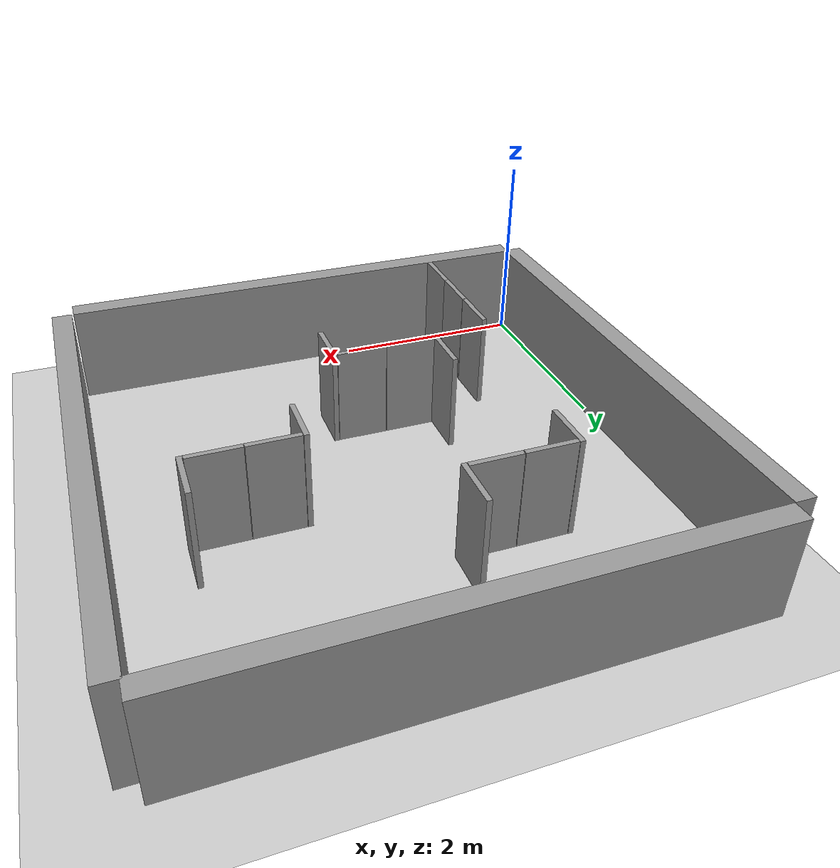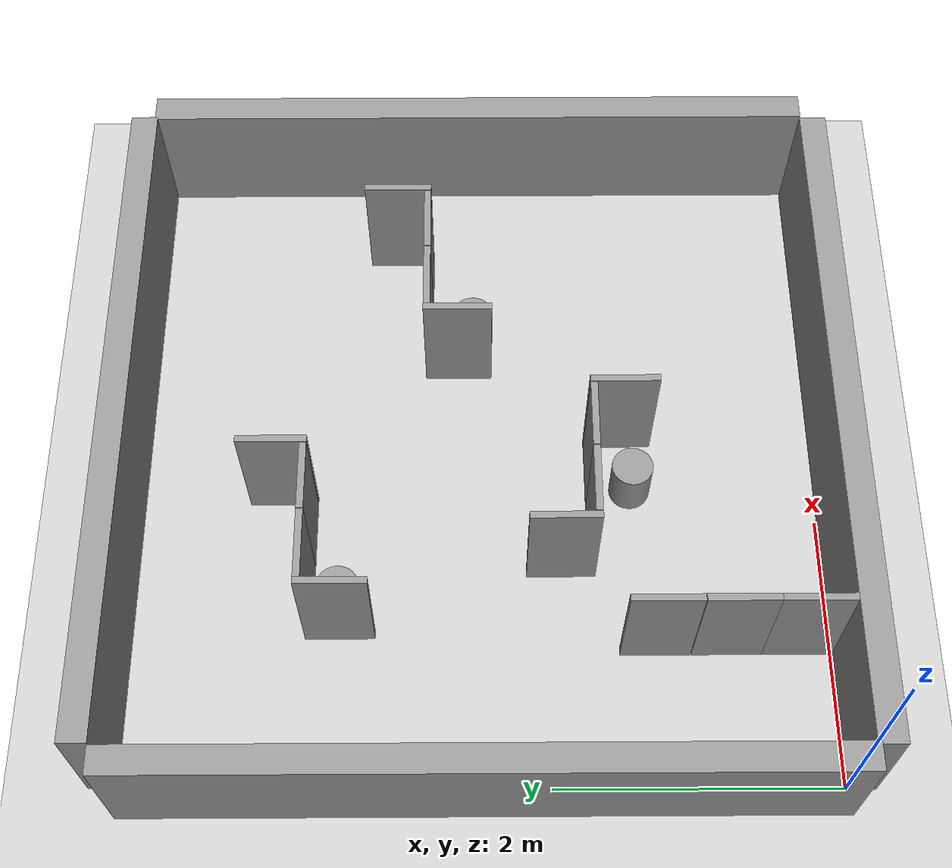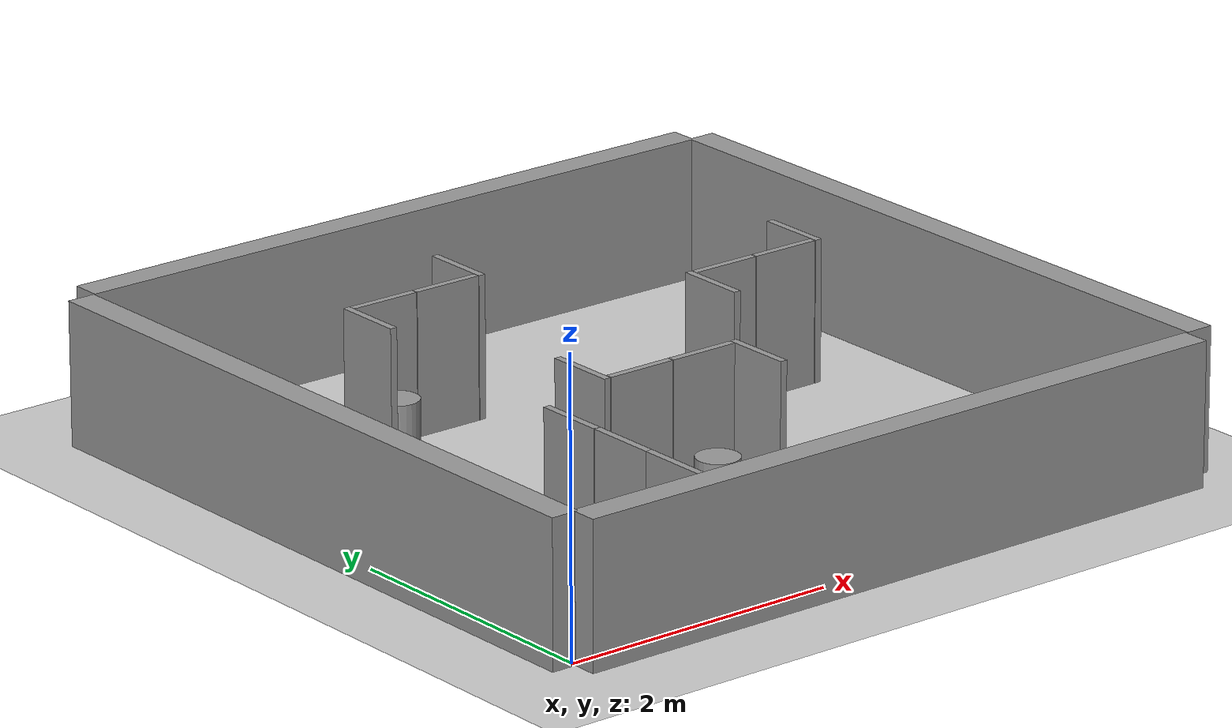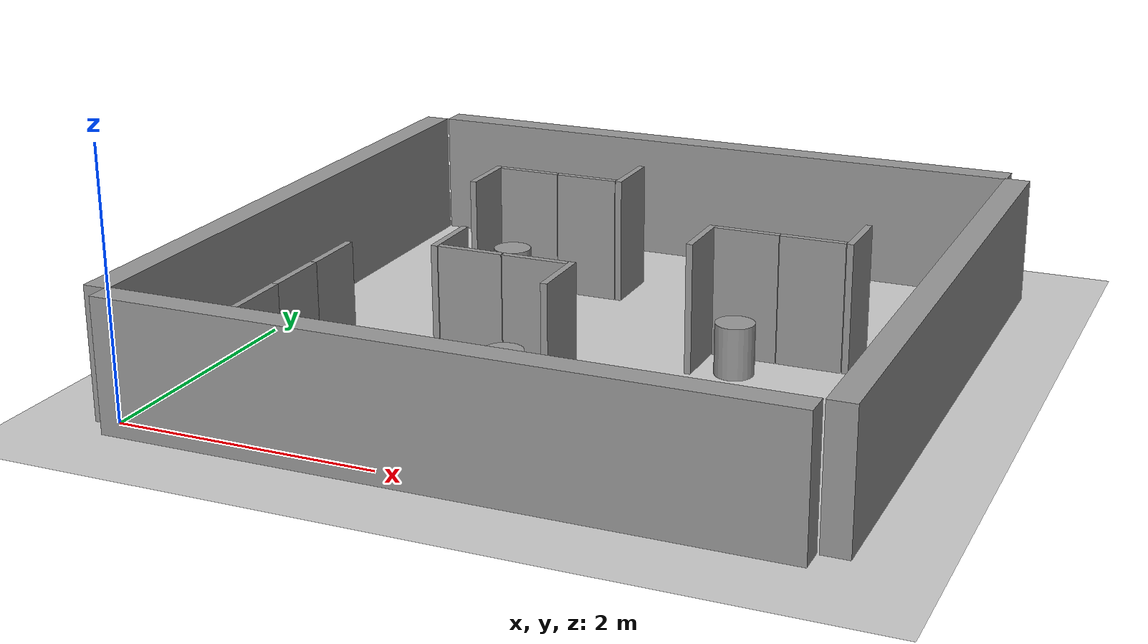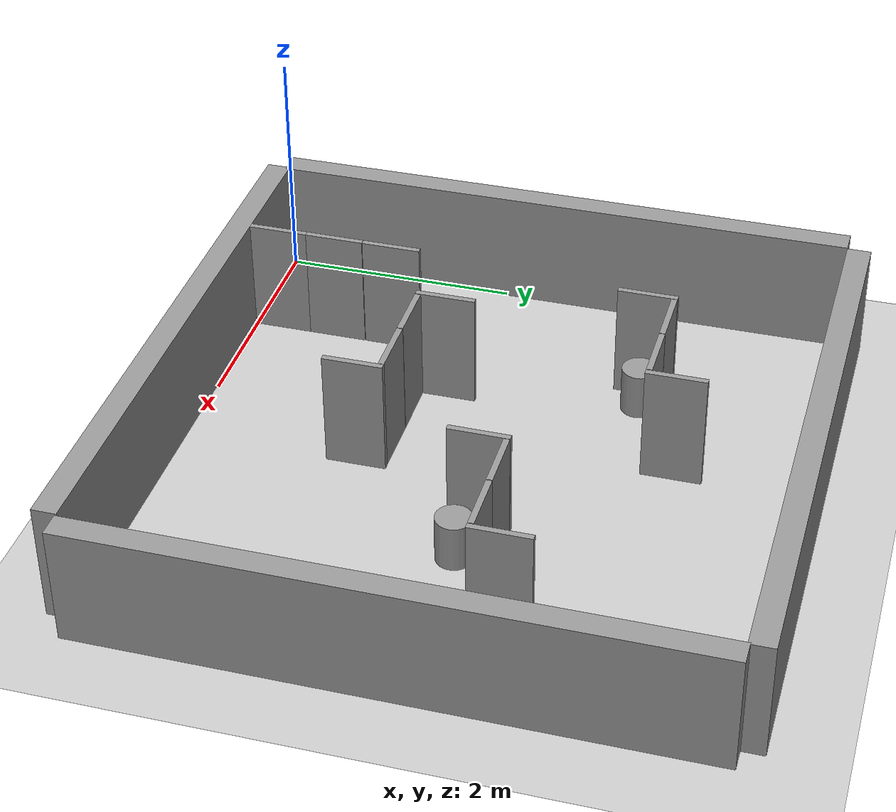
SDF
<sdf version="1.7">
 <world name="default">
  <light name="sun" type="directional">
   <pose>0 0 10 0 -0 0</pose>
   <diffuse>0.8 0.8 0.8 1</diffuse>
   <specular>0.2 0.2 0.2 1</specular>
   <attenuation>
    <range>1000</range>
    <constant>0.9</constant>
    <linear>0.01</linear>
    <quadratic>0.001</quadratic>
   </attenuation>
   <direction>-0.5 0.1 -0.9</direction>
   <spot><inner_angle>0</inner_angle><outer_angle>0</outer_angle><falloff>0</falloff></spot>
  </light>
  <model name="ground_plane">
   <static>1</static>
   <link name="link">
    <collision name="collision">
     <geometry><plane><normal>0 0 1</normal><size>100 100</size></plane></geometry>
     <surface><friction><ode><mu>100</mu><mu2>50</mu2></ode></friction></surface>
    </collision>
    <visual name="visual">
     <cast_shadows>0</cast_shadows>
     <geometry><plane><normal>0 0 1</normal><size>100 100</size></plane></geometry>
     <material>
      <script><uri>file://media/materials/scripts/gazebo.material</uri><name>Gazebo/Grey</name></script>
     </material>
    </visual>
   </link>
  </model>
  <gravity>0 0 -9.8</gravity>
  <magnetic_field>6e-06 2.3e-05 -4.2e-05</magnetic_field>
  <atmosphere type="adiabatic"/>
  <physics type="ode">
   <max_step_size>0.001</max_step_size>
   <real_time_factor>1</real_time_factor>
   <real_time_update_rate>1000</real_time_update_rate>
  </physics>
  <scene><ambient>0.4 0.4 0.4 1</ambient><background>0.7 0.7 0.7 1</background><shadows>1</shadows></scene>
  <audio><device>default</device></audio>
  <spherical_coordinates>
   <surface_model>EARTH_WGS84</surface_model>
   <latitude_deg>0</latitude_deg>
   <longitude_deg>0</longitude_deg>
   <elevation>0</elevation>
   <heading_deg>0</heading_deg>
  </spherical_coordinates>
  <model name="maze_wall_5m">
   <link name="link_0">
    <inertial>
     <mass>1</mass>
     <inertia>
      <ixx>0.166667</ixx>
      <ixy>0</ixy>
      <ixz>0</ixz>
      <iyy>0.166667</iyy>
      <iyz>0</iyz>
      <izz>0.166667</izz>
     </inertia>
    </inertial>
    <visual name="visual">
     <geometry><box><size>5 0.2 1</size></box></geometry>
     <material>
      <lighting>1</lighting>
      <script><uri>file://media/materials/scripts/gazebo.material</uri><name>Gazebo/Grey</name></script>
      <shader type="pixel"><normal_map>__default__</normal_map></shader>
      <ambient>0.3 0.3 0.3 1</ambient>
      <diffuse>0.7 0.7 0.7 1</diffuse>
      <specular>0.01 0.01 0.01 1</specular>
      <emissive>0 0 0 1</emissive>
     </material>
    </visual>
    <collision name="collision">
     <geometry><box><size>5 0.2 1</size></box></geometry>
     <surface>
      <friction>
       <ode><mu>1</mu><mu2>1</mu2><fdir1>0 0 0</fdir1><slip1>0</slip1><slip2>0</slip2></ode>
       <torsional>
        <coefficient>1</coefficient>
        <patch_radius>0</patch_radius>
        <surface_radius>0</surface_radius>
        <use_patch_radius>1</use_patch_radius>
        <ode><slip>0</slip></ode>
       </torsional>
      </friction>
      <bounce><restitution_coefficient>0</restitution_coefficient><threshold>1e+06</threshold></bounce>
      <contact>
       <collide_without_contact>0</collide_without_contact>
       <collide_without_contact_bitmask>1</collide_without_contact_bitmask>
       <collide_bitmask>1</collide_bitmask>
       <ode>
        <soft_cfm>0</soft_cfm>
        <soft_erp>0.2</soft_erp>
        <kp>1e+13</kp>
        <kd>1</kd>
        <max_vel>0.01</max_vel>
        <min_depth>0</min_depth>
       </ode>
       <bullet>
        <split_impulse>1</split_impulse>
        <split_impulse_penetration_threshold>-0.01</split_impulse_penetration_threshold>
        <soft_cfm>0</soft_cfm>
        <soft_erp>0.2</soft_erp>
        <kp>1e+13</kp>
        <kd>1</kd>
       </bullet>
      </contact>
     </surface>
    </collision>
   </link>
   <static>1</static>
   <pose>2.49843 -0.109529 0.5 0 -0 0</pose>
  </model>
  <model name="maze_wall_5m_clone">
   <link name="link_0">
    <inertial>
     <mass>1</mass>
     <inertia>
      <ixx>0.166667</ixx>
      <ixy>0</ixy>
      <ixz>0</ixz>
      <iyy>0.166667</iyy>
      <iyz>0</iyz>
      <izz>0.166667</izz>
     </inertia>
    </inertial>
    <visual name="visual">
     <geometry><box><size>5 0.2 1</size></box></geometry>
     <material>
      <lighting>1</lighting>
      <script><uri>file://media/materials/scripts/gazebo.material</uri><name>Gazebo/Grey</name></script>
      <shader type="pixel"><normal_map>__default__</normal_map></shader>
      <ambient>0.3 0.3 0.3 1</ambient>
      <diffuse>0.7 0.7 0.7 1</diffuse>
      <specular>0.01 0.01 0.01 1</specular>
      <emissive>0 0 0 1</emissive>
     </material>
    </visual>
    <collision name="collision">
     <geometry><box><size>5 0.2 1</size></box></geometry>
     <surface>
      <friction>
       <ode><mu>1</mu><mu2>1</mu2><fdir1>0 0 0</fdir1><slip1>0</slip1><slip2>0</slip2></ode>
       <torsional>
        <coefficient>1</coefficient>
        <patch_radius>0</patch_radius>
        <surface_radius>0</surface_radius>
        <use_patch_radius>1</use_patch_radius>
        <ode><slip>0</slip></ode>
       </torsional>
      </friction>
      <bounce><restitution_coefficient>0</restitution_coefficient><threshold>1e+06</threshold></bounce>
      <contact>
       <collide_without_contact>0</collide_without_contact>
       <collide_without_contact_bitmask>1</collide_without_contact_bitmask>
       <collide_bitmask>1</collide_bitmask>
       <ode>
        <soft_cfm>0</soft_cfm>
        <soft_erp>0.2</soft_erp>
        <kp>1e+13</kp>
        <kd>1</kd>
        <max_vel>0.01</max_vel>
        <min_depth>0</min_depth>
       </ode>
       <bullet>
        <split_impulse>1</split_impulse>
        <split_impulse_penetration_threshold>-0.01</split_impulse_penetration_threshold>
        <soft_cfm>0</soft_cfm>
        <soft_erp>0.2</soft_erp>
        <kp>1e+13</kp>
        <kd>1</kd>
       </bullet>
      </contact>
     </surface>
    </collision>
   </link>
   <static>1</static>
   <pose>-0.076307 2.46205 0.5 0 -0 1.5708</pose>
  </model>
  <model name="maze_wall_5m_clone_0">
   <link name="link_0">
    <inertial>
     <mass>1</mass>
     <inertia>
      <ixx>0.166667</ixx>
      <ixy>0</ixy>
      <ixz>0</ixz>
      <iyy>0.166667</iyy>
      <iyz>0</iyz>
      <izz>0.166667</izz>
     </inertia>
    </inertial>
    <visual name="visual">
     <geometry><box><size>5 0.2 1</size></box></geometry>
     <material>
      <lighting>1</lighting>
      <script><uri>file://media/materials/scripts/gazebo.material</uri><name>Gazebo/Grey</name></script>
      <shader type="pixel"><normal_map>__default__</normal_map></shader>
      <ambient>0.3 0.3 0.3 1</ambient>
      <diffuse>0.7 0.7 0.7 1</diffuse>
      <specular>0.01 0.01 0.01 1</specular>
      <emissive>0 0 0 1</emissive>
     </material>
    </visual>
    <collision name="collision">
     <geometry><box><size>5 0.2 1</size></box></geometry>
     <surface>
      <friction>
       <ode><mu>1</mu><mu2>1</mu2><fdir1>0 0 0</fdir1><slip1>0</slip1><slip2>0</slip2></ode>
       <torsional>
        <coefficient>1</coefficient>
        <patch_radius>0</patch_radius>
        <surface_radius>0</surface_radius>
        <use_patch_radius>1</use_patch_radius>
        <ode><slip>0</slip></ode>
       </torsional>
      </friction>
      <bounce><restitution_coefficient>0</restitution_coefficient><threshold>1e+06</threshold></bounce>
      <contact>
       <collide_without_contact>0</collide_without_contact>
       <collide_without_contact_bitmask>1</collide_without_contact_bitmask>
       <collide_bitmask>1</collide_bitmask>
       <ode>
        <soft_cfm>0</soft_cfm>
        <soft_erp>0.2</soft_erp>
        <kp>1e+13</kp>
        <kd>1</kd>
        <max_vel>0.01</max_vel>
        <min_depth>0</min_depth>
       </ode>
       <bullet>
        <split_impulse>1</split_impulse>
        <split_impulse_penetration_threshold>-0.01</split_impulse_penetration_threshold>
        <soft_cfm>0</soft_cfm>
        <soft_erp>0.2</soft_erp>
        <kp>1e+13</kp>
        <kd>1</kd>
       </bullet>
      </contact>
     </surface>
    </collision>
   </link>
   <static>1</static>
   <pose>2.53173 5.06225 0.5 0 -0 0</pose>
  </model>
  <model name="maze_wall_5m_clone_clone">
   <link name="link_0">
    <inertial>
     <mass>1</mass>
     <inertia>
      <ixx>0.166667</ixx>
      <ixy>0</ixy>
      <ixz>0</ixz>
      <iyy>0.166667</iyy>
      <iyz>0</iyz>
      <izz>0.166667</izz>
     </inertia>
    </inertial>
    <visual name="visual">
     <geometry><box><size>5 0.2 1</size></box></geometry>
     <material>
      <lighting>1</lighting>
      <script><uri>file://media/materials/scripts/gazebo.material</uri><name>Gazebo/Grey</name></script>
      <shader type="pixel"><normal_map>__default__</normal_map></shader>
      <ambient>0.3 0.3 0.3 1</ambient>
      <diffuse>0.7 0.7 0.7 1</diffuse>
      <specular>0.01 0.01 0.01 1</specular>
      <emissive>0 0 0 1</emissive>
     </material>
    </visual>
    <collision name="collision">
     <geometry><box><size>5 0.2 1</size></box></geometry>
     <surface>
      <friction>
       <ode><mu>1</mu><mu2>1</mu2><fdir1>0 0 0</fdir1><slip1>0</slip1><slip2>0</slip2></ode>
       <torsional>
        <coefficient>1</coefficient>
        <patch_radius>0</patch_radius>
        <surface_radius>0</surface_radius>
        <use_patch_radius>1</use_patch_radius>
        <ode><slip>0</slip></ode>
       </torsional>
      </friction>
      <bounce><restitution_coefficient>0</restitution_coefficient><threshold>1e+06</threshold></bounce>
      <contact>
       <collide_without_contact>0</collide_without_contact>
       <collide_without_contact_bitmask>1</collide_without_contact_bitmask>
       <collide_bitmask>1</collide_bitmask>
       <ode>
        <soft_cfm>0</soft_cfm>
        <soft_erp>0.2</soft_erp>
        <kp>1e+13</kp>
        <kd>1</kd>
        <max_vel>0.01</max_vel>
        <min_depth>0</min_depth>
       </ode>
       <bullet>
        <split_impulse>1</split_impulse>
        <split_impulse_penetration_threshold>-0.01</split_impulse_penetration_threshold>
        <soft_cfm>0</soft_cfm>
        <soft_erp>0.2</soft_erp>
        <kp>1e+13</kp>
        <kd>1</kd>
       </bullet>
      </contact>
     </surface>
    </collision>
   </link>
   <static>1</static>
   <pose>5.11463 2.48246 0.5 0 -0 1.5707</pose>
  </model>
  <model name="maze_obstacle_1">
   <model name="maze_wall_0.5m">
    <link name="link_0">
     <inertial>
      <mass>1</mass>
      <inertia>
       <ixx>0.166667</ixx>
       <ixy>0</ixy>
       <ixz>0</ixz>
       <iyy>0.166667</iyy>
       <iyz>0</iyz>
       <izz>0.166667</izz>
      </inertia>
     </inertial>
     <visual name="visual">
      <geometry><box><size>0.5 0.05 1</size></box></geometry>
      <material>
       <lighting>1</lighting>
       <script><uri>file://media/materials/scripts/gazebo.material</uri><name>Gazebo/Grey</name></script>
       <shader type="pixel"><normal_map>__default__</normal_map></shader>
       <ambient>0.3 0.3 0.3 1</ambient>
       <diffuse>0.7 0.7 0.7 1</diffuse>
       <specular>0.01 0.01 0.01 1</specular>
       <emissive>0 0 0 1</emissive>
      </material>
     </visual>
     <collision name="collision">
      <geometry><box><size>0.5 0.05 1</size></box></geometry>
      <surface>
       <friction>
        <ode><mu>1</mu><mu2>1</mu2><fdir1>0 0 0</fdir1><slip1>0</slip1><slip2>0</slip2></ode>
        <torsional>
         <coefficient>1</coefficient>
         <patch_radius>0</patch_radius>
         <surface_radius>0</surface_radius>
         <use_patch_radius>1</use_patch_radius>
         <ode><slip>0</slip></ode>
        </torsional>
       </friction>
       <bounce><restitution_coefficient>0</restitution_coefficient><threshold>1e+06</threshold></bounce>
       <contact>
        <collide_without_contact>0</collide_without_contact>
        <collide_without_contact_bitmask>1</collide_without_contact_bitmask>
        <collide_bitmask>1</collide_bitmask>
        <ode>
         <soft_cfm>0</soft_cfm>
         <soft_erp>0.2</soft_erp>
         <kp>1e+13</kp>
         <kd>1</kd>
         <max_vel>0.01</max_vel>
         <min_depth>0</min_depth>
        </ode>
        <bullet>
         <split_impulse>1</split_impulse>
         <split_impulse_penetration_threshold>-0.01</split_impulse_penetration_threshold>
         <soft_cfm>0</soft_cfm>
         <soft_erp>0.2</soft_erp>
         <kp>1e+13</kp>
         <kd>1</kd>
        </bullet>
       </contact>
      </surface>
     </collision>
    </link>
    <static>1</static>
    <pose>-0.252161 -0.00028 0 0 -0 0</pose>
   </model>
   <model name="maze_wall_0.5m_clone">
    <link name="link_0">
     <inertial>
      <mass>1</mass>
      <inertia>
       <ixx>0.166667</ixx>
       <ixy>0</ixy>
       <ixz>0</ixz>
       <iyy>0.166667</iyy>
       <iyz>0</iyz>
       <izz>0.166667</izz>
      </inertia>
     </inertial>
     <visual name="visual">
      <geometry><box><size>0.5 0.05 1</size></box></geometry>
      <material>
       <lighting>1</lighting>
       <script><uri>file://media/materials/scripts/gazebo.material</uri><name>Gazebo/Grey</name></script>
       <shader type="pixel"><normal_map>__default__</normal_map></shader>
       <ambient>0.3 0.3 0.3 1</ambient>
       <diffuse>0.7 0.7 0.7 1</diffuse>
       <specular>0.01 0.01 0.01 1</specular>
       <emissive>0 0 0 1</emissive>
      </material>
     </visual>
     <collision name="collision">
      <geometry><box><size>0.5 0.05 1</size></box></geometry>
      <surface>
       <friction>
        <ode><mu>1</mu><mu2>1</mu2><fdir1>0 0 0</fdir1><slip1>0</slip1><slip2>0</slip2></ode>
        <torsional>
         <coefficient>1</coefficient>
         <patch_radius>0</patch_radius>
         <surface_radius>0</surface_radius>
         <use_patch_radius>1</use_patch_radius>
         <ode><slip>0</slip></ode>
        </torsional>
       </friction>
       <bounce><restitution_coefficient>0</restitution_coefficient><threshold>1e+06</threshold></bounce>
       <contact>
        <collide_without_contact>0</collide_without_contact>
        <collide_without_contact_bitmask>1</collide_without_contact_bitmask>
        <collide_bitmask>1</collide_bitmask>
        <ode>
         <soft_cfm>0</soft_cfm>
         <soft_erp>0.2</soft_erp>
         <kp>1e+13</kp>
         <kd>1</kd>
         <max_vel>0.01</max_vel>
         <min_depth>0</min_depth>
        </ode>
        <bullet>
         <split_impulse>1</split_impulse>
         <split_impulse_penetration_threshold>-0.01</split_impulse_penetration_threshold>
         <soft_cfm>0</soft_cfm>
         <soft_erp>0.2</soft_erp>
         <kp>1e+13</kp>
         <kd>1</kd>
        </bullet>
       </contact>
      </surface>
     </collision>
    </link>
    <static>1</static>
    <pose>0.253505 -0.00028 0 0 -0 0</pose>
   </model>
   <model name="maze_wall_0.5m_clone_0">
    <link name="link_0">
     <inertial>
      <mass>1</mass>
      <inertia>
       <ixx>0.166667</ixx>
       <ixy>0</ixy>
       <ixz>0</ixz>
       <iyy>0.166667</iyy>
       <iyz>0</iyz>
       <izz>0.166667</izz>
      </inertia>
     </inertial>
     <visual name="visual">
      <geometry><box><size>0.5 0.05 1</size></box></geometry>
      <material>
       <lighting>1</lighting>
       <script><uri>file://media/materials/scripts/gazebo.material</uri><name>Gazebo/Grey</name></script>
       <shader type="pixel"><normal_map>__default__</normal_map></shader>
       <ambient>0.3 0.3 0.3 1</ambient>
       <diffuse>0.7 0.7 0.7 1</diffuse>
       <specular>0.01 0.01 0.01 1</specular>
       <emissive>0 0 0 1</emissive>
      </material>
     </visual>
     <collision name="collision">
      <geometry><box><size>0.5 0.05 1</size></box></geometry>
      <surface>
       <friction>
        <ode><mu>1</mu><mu2>1</mu2><fdir1>0 0 0</fdir1><slip1>0</slip1><slip2>0</slip2></ode>
        <torsional>
         <coefficient>1</coefficient>
         <patch_radius>0</patch_radius>
         <surface_radius>0</surface_radius>
         <use_patch_radius>1</use_patch_radius>
         <ode><slip>0</slip></ode>
        </torsional>
       </friction>
       <bounce><restitution_coefficient>0</restitution_coefficient><threshold>1e+06</threshold></bounce>
       <contact>
        <collide_without_contact>0</collide_without_contact>
        <collide_without_contact_bitmask>1</collide_without_contact_bitmask>
        <collide_bitmask>1</collide_bitmask>
        <ode>
         <soft_cfm>0</soft_cfm>
         <soft_erp>0.2</soft_erp>
         <kp>1e+13</kp>
         <kd>1</kd>
         <max_vel>0.01</max_vel>
         <min_depth>0</min_depth>
        </ode>
        <bullet>
         <split_impulse>1</split_impulse>
         <split_impulse_penetration_threshold>-0.01</split_impulse_penetration_threshold>
         <soft_cfm>0</soft_cfm>
         <soft_erp>0.2</soft_erp>
         <kp>1e+13</kp>
         <kd>1</kd>
        </bullet>
       </contact>
      </surface>
     </collision>
    </link>
    <static>1</static>
    <pose>-0.533886 0.224671 0 0 0 -1.56757</pose>
   </model>
   <model name="maze_wall_0.5m_clone_0_clone">
    <link name="link_0">
     <inertial>
      <mass>1</mass>
      <inertia>
       <ixx>0.166667</ixx>
       <ixy>0</ixy>
       <ixz>0</ixz>
       <iyy>0.166667</iyy>
       <iyz>0</iyz>
       <izz>0.166667</izz>
      </inertia>
     </inertial>
     <visual name="visual">
      <geometry><box><size>0.5 0.05 1</size></box></geometry>
      <material>
       <lighting>1</lighting>
       <script><uri>file://media/materials/scripts/gazebo.material</uri><name>Gazebo/Grey</name></script>
       <shader type="pixel"><normal_map>__default__</normal_map></shader>
       <ambient>0.3 0.3 0.3 1</ambient>
       <diffuse>0.7 0.7 0.7 1</diffuse>
       <specular>0.01 0.01 0.01 1</specular>
       <emissive>0 0 0 1</emissive>
      </material>
     </visual>
     <collision name="collision">
      <geometry><box><size>0.5 0.05 1</size></box></geometry>
      <surface>
       <friction>
        <ode><mu>1</mu><mu2>1</mu2><fdir1>0 0 0</fdir1><slip1>0</slip1><slip2>0</slip2></ode>
        <torsional>
         <coefficient>1</coefficient>
         <patch_radius>0</patch_radius>
         <surface_radius>0</surface_radius>
         <use_patch_radius>1</use_patch_radius>
         <ode><slip>0</slip></ode>
        </torsional>
       </friction>
       <bounce><restitution_coefficient>0</restitution_coefficient><threshold>1e+06</threshold></bounce>
       <contact>
        <collide_without_contact>0</collide_without_contact>
        <collide_without_contact_bitmask>1</collide_without_contact_bitmask>
        <collide_bitmask>1</collide_bitmask>
        <ode>
         <soft_cfm>0</soft_cfm>
         <soft_erp>0.2</soft_erp>
         <kp>1e+13</kp>
         <kd>1</kd>
         <max_vel>0.01</max_vel>
         <min_depth>0</min_depth>
        </ode>
        <bullet>
         <split_impulse>1</split_impulse>
         <split_impulse_penetration_threshold>-0.01</split_impulse_penetration_threshold>
         <soft_cfm>0</soft_cfm>
         <soft_erp>0.2</soft_erp>
         <kp>1e+13</kp>
         <kd>1</kd>
        </bullet>
       </contact>
      </surface>
     </collision>
    </link>
    <static>1</static>
    <pose>0.532542 -0.224112 0 0 0 -1.56757</pose>
   </model>
   <joint name="link_0_JOINT_1" type="fixed">
    <parent>maze_wall_0.5m_clone::link_0</parent>
    <child>maze_wall_0.5m_clone_0::link_0</child>
    <physics>
     <ode><limit><cfm>0</cfm><erp>0.2</erp></limit><suspension><cfm>0</cfm><erp>0.2</erp></suspension></ode>
    </physics>
   </joint>
   <joint name="link_0_JOINT_2" type="fixed">
    <parent>maze_wall_0.5m_clone::link_0</parent>
    <child>maze_wall_0.5m::link_0</child>
    <physics>
     <ode><limit><cfm>0</cfm><erp>0.2</erp></limit><suspension><cfm>0</cfm><erp>0.2</erp></suspension></ode>
    </physics>
   </joint>
   <static>1</static>
   <pose>2.14066 1.6716 0.5 0 -0 0</pose>
  </model>
  <model name="maze_obstacle_1_clone">
   <model name="maze_wall_0.5m">
    <link name="link_0">
     <inertial>
      <mass>1</mass>
      <inertia>
       <ixx>0.166667</ixx>
       <ixy>0</ixy>
       <ixz>0</ixz>
       <iyy>0.166667</iyy>
       <iyz>0</iyz>
       <izz>0.166667</izz>
      </inertia>
     </inertial>
     <visual name="visual">
      <geometry><box><size>0.5 0.05 1</size></box></geometry>
      <material>
       <lighting>1</lighting>
       <script><uri>file://media/materials/scripts/gazebo.material</uri><name>Gazebo/Grey</name></script>
       <shader type="pixel"><normal_map>__default__</normal_map></shader>
       <ambient>0.3 0.3 0.3 1</ambient>
       <diffuse>0.7 0.7 0.7 1</diffuse>
       <specular>0.01 0.01 0.01 1</specular>
       <emissive>0 0 0 1</emissive>
      </material>
     </visual>
     <collision name="collision">
      <geometry><box><size>0.5 0.05 1</size></box></geometry>
      <surface>
       <friction>
        <ode><mu>1</mu><mu2>1</mu2><fdir1>0 0 0</fdir1><slip1>0</slip1><slip2>0</slip2></ode>
        <torsional>
         <coefficient>1</coefficient>
         <patch_radius>0</patch_radius>
         <surface_radius>0</surface_radius>
         <use_patch_radius>1</use_patch_radius>
         <ode><slip>0</slip></ode>
        </torsional>
       </friction>
       <bounce><restitution_coefficient>0</restitution_coefficient><threshold>1e+06</threshold></bounce>
       <contact>
        <collide_without_contact>0</collide_without_contact>
        <collide_without_contact_bitmask>1</collide_without_contact_bitmask>
        <collide_bitmask>1</collide_bitmask>
        <ode>
         <soft_cfm>0</soft_cfm>
         <soft_erp>0.2</soft_erp>
         <kp>1e+13</kp>
         <kd>1</kd>
         <max_vel>0.01</max_vel>
         <min_depth>0</min_depth>
        </ode>
        <bullet>
         <split_impulse>1</split_impulse>
         <split_impulse_penetration_threshold>-0.01</split_impulse_penetration_threshold>
         <soft_cfm>0</soft_cfm>
         <soft_erp>0.2</soft_erp>
         <kp>1e+13</kp>
         <kd>1</kd>
        </bullet>
       </contact>
      </surface>
     </collision>
    </link>
    <static>1</static>
    <pose>-0.252161 -0.00028 0 0 -0 0</pose>
   </model>
   <model name="maze_wall_0.5m_clone">
    <link name="link_0">
     <inertial>
      <mass>1</mass>
      <inertia>
       <ixx>0.166667</ixx>
       <ixy>0</ixy>
       <ixz>0</ixz>
       <iyy>0.166667</iyy>
       <iyz>0</iyz>
       <izz>0.166667</izz>
      </inertia>
     </inertial>
     <visual name="visual">
      <geometry><box><size>0.5 0.05 1</size></box></geometry>
      <material>
       <lighting>1</lighting>
       <script><uri>file://media/materials/scripts/gazebo.material</uri><name>Gazebo/Grey</name></script>
       <shader type="pixel"><normal_map>__default__</normal_map></shader>
       <ambient>0.3 0.3 0.3 1</ambient>
       <diffuse>0.7 0.7 0.7 1</diffuse>
       <specular>0.01 0.01 0.01 1</specular>
       <emissive>0 0 0 1</emissive>
      </material>
     </visual>
     <collision name="collision">
      <geometry><box><size>0.5 0.05 1</size></box></geometry>
      <surface>
       <friction>
        <ode><mu>1</mu><mu2>1</mu2><fdir1>0 0 0</fdir1><slip1>0</slip1><slip2>0</slip2></ode>
        <torsional>
         <coefficient>1</coefficient>
         <patch_radius>0</patch_radius>
         <surface_radius>0</surface_radius>
         <use_patch_radius>1</use_patch_radius>
         <ode><slip>0</slip></ode>
        </torsional>
       </friction>
       <bounce><restitution_coefficient>0</restitution_coefficient><threshold>1e+06</threshold></bounce>
       <contact>
        <collide_without_contact>0</collide_without_contact>
        <collide_without_contact_bitmask>1</collide_without_contact_bitmask>
        <collide_bitmask>1</collide_bitmask>
        <ode>
         <soft_cfm>0</soft_cfm>
         <soft_erp>0.2</soft_erp>
         <kp>1e+13</kp>
         <kd>1</kd>
         <max_vel>0.01</max_vel>
         <min_depth>0</min_depth>
        </ode>
        <bullet>
         <split_impulse>1</split_impulse>
         <split_impulse_penetration_threshold>-0.01</split_impulse_penetration_threshold>
         <soft_cfm>0</soft_cfm>
         <soft_erp>0.2</soft_erp>
         <kp>1e+13</kp>
         <kd>1</kd>
        </bullet>
       </contact>
      </surface>
     </collision>
    </link>
    <static>1</static>
    <pose>0.253505 -0.00028 0 0 -0 0</pose>
   </model>
   <model name="maze_wall_0.5m_clone_0">
    <link name="link_0">
     <inertial>
      <mass>1</mass>
      <inertia>
       <ixx>0.166667</ixx>
       <ixy>0</ixy>
       <ixz>0</ixz>
       <iyy>0.166667</iyy>
       <iyz>0</iyz>
       <izz>0.166667</izz>
      </inertia>
     </inertial>
     <visual name="visual">
      <geometry><box><size>0.5 0.05 1</size></box></geometry>
      <material>
       <lighting>1</lighting>
       <script><uri>file://media/materials/scripts/gazebo.material</uri><name>Gazebo/Grey</name></script>
       <shader type="pixel"><normal_map>__default__</normal_map></shader>
       <ambient>0.3 0.3 0.3 1</ambient>
       <diffuse>0.7 0.7 0.7 1</diffuse>
       <specular>0.01 0.01 0.01 1</specular>
       <emissive>0 0 0 1</emissive>
      </material>
     </visual>
     <collision name="collision">
      <geometry><box><size>0.5 0.05 1</size></box></geometry>
      <surface>
       <friction>
        <ode><mu>1</mu><mu2>1</mu2><fdir1>0 0 0</fdir1><slip1>0</slip1><slip2>0</slip2></ode>
        <torsional>
         <coefficient>1</coefficient>
         <patch_radius>0</patch_radius>
         <surface_radius>0</surface_radius>
         <use_patch_radius>1</use_patch_radius>
         <ode><slip>0</slip></ode>
        </torsional>
       </friction>
       <bounce><restitution_coefficient>0</restitution_coefficient><threshold>1e+06</threshold></bounce>
       <contact>
        <collide_without_contact>0</collide_without_contact>
        <collide_without_contact_bitmask>1</collide_without_contact_bitmask>
        <collide_bitmask>1</collide_bitmask>
        <ode>
         <soft_cfm>0</soft_cfm>
         <soft_erp>0.2</soft_erp>
         <kp>1e+13</kp>
         <kd>1</kd>
         <max_vel>0.01</max_vel>
         <min_depth>0</min_depth>
        </ode>
        <bullet>
         <split_impulse>1</split_impulse>
         <split_impulse_penetration_threshold>-0.01</split_impulse_penetration_threshold>
         <soft_cfm>0</soft_cfm>
         <soft_erp>0.2</soft_erp>
         <kp>1e+13</kp>
         <kd>1</kd>
        </bullet>
       </contact>
      </surface>
     </collision>
    </link>
    <static>1</static>
    <pose>-0.533886 0.224671 0 0 0 -1.56757</pose>
   </model>
   <model name="maze_wall_0.5m_clone_0_clone">
    <link name="link_0">
     <inertial>
      <mass>1</mass>
      <inertia>
       <ixx>0.166667</ixx>
       <ixy>0</ixy>
       <ixz>0</ixz>
       <iyy>0.166667</iyy>
       <iyz>0</iyz>
       <izz>0.166667</izz>
      </inertia>
     </inertial>
     <visual name="visual">
      <geometry><box><size>0.5 0.05 1</size></box></geometry>
      <material>
       <lighting>1</lighting>
       <script><uri>file://media/materials/scripts/gazebo.material</uri><name>Gazebo/Grey</name></script>
       <shader type="pixel"><normal_map>__default__</normal_map></shader>
       <ambient>0.3 0.3 0.3 1</ambient>
       <diffuse>0.7 0.7 0.7 1</diffuse>
       <specular>0.01 0.01 0.01 1</specular>
       <emissive>0 0 0 1</emissive>
      </material>
     </visual>
     <collision name="collision">
      <geometry><box><size>0.5 0.05 1</size></box></geometry>
      <surface>
       <friction>
        <ode><mu>1</mu><mu2>1</mu2><fdir1>0 0 0</fdir1><slip1>0</slip1><slip2>0</slip2></ode>
        <torsional>
         <coefficient>1</coefficient>
         <patch_radius>0</patch_radius>
         <surface_radius>0</surface_radius>
         <use_patch_radius>1</use_patch_radius>
         <ode><slip>0</slip></ode>
        </torsional>
       </friction>
       <bounce><restitution_coefficient>0</restitution_coefficient><threshold>1e+06</threshold></bounce>
       <contact>
        <collide_without_contact>0</collide_without_contact>
        <collide_without_contact_bitmask>1</collide_without_contact_bitmask>
        <collide_bitmask>1</collide_bitmask>
        <ode>
         <soft_cfm>0</soft_cfm>
         <soft_erp>0.2</soft_erp>
         <kp>1e+13</kp>
         <kd>1</kd>
         <max_vel>0.01</max_vel>
         <min_depth>0</min_depth>
        </ode>
        <bullet>
         <split_impulse>1</split_impulse>
         <split_impulse_penetration_threshold>-0.01</split_impulse_penetration_threshold>
         <soft_cfm>0</soft_cfm>
         <soft_erp>0.2</soft_erp>
         <kp>1e+13</kp>
         <kd>1</kd>
        </bullet>
       </contact>
      </surface>
     </collision>
    </link>
    <static>1</static>
    <pose>0.532542 -0.224112 0 0 0 -1.56757</pose>
   </model>
   <joint name="link_0_JOINT_1" type="fixed">
    <parent>maze_wall_0.5m_clone::link_0</parent>
    <child>maze_wall_0.5m_clone_0::link_0</child>
    <physics>
     <ode><limit><cfm>0</cfm><erp>0.2</erp></limit><suspension><cfm>0</cfm><erp>0.2</erp></suspension></ode>
    </physics>
   </joint>
   <joint name="link_0_JOINT_2" type="fixed">
    <parent>maze_wall_0.5m_clone::link_0</parent>
    <child>maze_wall_0.5m::link_0</child>
    <physics>
     <ode><limit><cfm>0</cfm><erp>0.2</erp></limit><suspension><cfm>0</cfm><erp>0.2</erp></suspension></ode>
    </physics>
   </joint>
   <static>1</static>
   <pose>1.66649 3.70639 0.5 3.14159 7.4e-05 3.14159</pose>
  </model>
  <model name="maze_obstacle_1_clone_clone">
   <model name="maze_wall_0.5m">
    <link name="link_0">
     <inertial>
      <mass>1</mass>
      <inertia>
       <ixx>0.166667</ixx>
       <ixy>0</ixy>
       <ixz>0</ixz>
       <iyy>0.166667</iyy>
       <iyz>0</iyz>
       <izz>0.166667</izz>
      </inertia>
     </inertial>
     <visual name="visual">
      <geometry><box><size>0.5 0.05 1</size></box></geometry>
      <material>
       <lighting>1</lighting>
       <script><uri>file://media/materials/scripts/gazebo.material</uri><name>Gazebo/Grey</name></script>
       <shader type="pixel"><normal_map>__default__</normal_map></shader>
       <ambient>0.3 0.3 0.3 1</ambient>
       <diffuse>0.7 0.7 0.7 1</diffuse>
       <specular>0.01 0.01 0.01 1</specular>
       <emissive>0 0 0 1</emissive>
      </material>
     </visual>
     <collision name="collision">
      <geometry><box><size>0.5 0.05 1</size></box></geometry>
      <surface>
       <friction>
        <ode><mu>1</mu><mu2>1</mu2><fdir1>0 0 0</fdir1><slip1>0</slip1><slip2>0</slip2></ode>
        <torsional>
         <coefficient>1</coefficient>
         <patch_radius>0</patch_radius>
         <surface_radius>0</surface_radius>
         <use_patch_radius>1</use_patch_radius>
         <ode><slip>0</slip></ode>
        </torsional>
       </friction>
       <bounce><restitution_coefficient>0</restitution_coefficient><threshold>1e+06</threshold></bounce>
       <contact>
        <collide_without_contact>0</collide_without_contact>
        <collide_without_contact_bitmask>1</collide_without_contact_bitmask>
        <collide_bitmask>1</collide_bitmask>
        <ode>
         <soft_cfm>0</soft_cfm>
         <soft_erp>0.2</soft_erp>
         <kp>1e+13</kp>
         <kd>1</kd>
         <max_vel>0.01</max_vel>
         <min_depth>0</min_depth>
        </ode>
        <bullet>
         <split_impulse>1</split_impulse>
         <split_impulse_penetration_threshold>-0.01</split_impulse_penetration_threshold>
         <soft_cfm>0</soft_cfm>
         <soft_erp>0.2</soft_erp>
         <kp>1e+13</kp>
         <kd>1</kd>
        </bullet>
       </contact>
      </surface>
     </collision>
    </link>
    <static>1</static>
    <pose>-0.252161 -0.00028 0 0 -0 0</pose>
   </model>
   <model name="maze_wall_0.5m_clone">
    <link name="link_0">
     <inertial>
      <mass>1</mass>
      <inertia>
       <ixx>0.166667</ixx>
       <ixy>0</ixy>
       <ixz>0</ixz>
       <iyy>0.166667</iyy>
       <iyz>0</iyz>
       <izz>0.166667</izz>
      </inertia>
     </inertial>
     <visual name="visual">
      <geometry><box><size>0.5 0.05 1</size></box></geometry>
      <material>
       <lighting>1</lighting>
       <script><uri>file://media/materials/scripts/gazebo.material</uri><name>Gazebo/Grey</name></script>
       <shader type="pixel"><normal_map>__default__</normal_map></shader>
       <ambient>0.3 0.3 0.3 1</ambient>
       <diffuse>0.7 0.7 0.7 1</diffuse>
       <specular>0.01 0.01 0.01 1</specular>
       <emissive>0 0 0 1</emissive>
      </material>
     </visual>
     <collision name="collision">
      <geometry><box><size>0.5 0.05 1</size></box></geometry>
      <surface>
       <friction>
        <ode><mu>1</mu><mu2>1</mu2><fdir1>0 0 0</fdir1><slip1>0</slip1><slip2>0</slip2></ode>
        <torsional>
         <coefficient>1</coefficient>
         <patch_radius>0</patch_radius>
         <surface_radius>0</surface_radius>
         <use_patch_radius>1</use_patch_radius>
         <ode><slip>0</slip></ode>
        </torsional>
       </friction>
       <bounce><restitution_coefficient>0</restitution_coefficient><threshold>1e+06</threshold></bounce>
       <contact>
        <collide_without_contact>0</collide_without_contact>
        <collide_without_contact_bitmask>1</collide_without_contact_bitmask>
        <collide_bitmask>1</collide_bitmask>
        <ode>
         <soft_cfm>0</soft_cfm>
         <soft_erp>0.2</soft_erp>
         <kp>1e+13</kp>
         <kd>1</kd>
         <max_vel>0.01</max_vel>
         <min_depth>0</min_depth>
        </ode>
        <bullet>
         <split_impulse>1</split_impulse>
         <split_impulse_penetration_threshold>-0.01</split_impulse_penetration_threshold>
         <soft_cfm>0</soft_cfm>
         <soft_erp>0.2</soft_erp>
         <kp>1e+13</kp>
         <kd>1</kd>
        </bullet>
       </contact>
      </surface>
     </collision>
    </link>
    <static>1</static>
    <pose>0.253505 -0.00028 0 0 -0 0</pose>
   </model>
   <model name="maze_wall_0.5m_clone_0">
    <link name="link_0">
     <inertial>
      <mass>1</mass>
      <inertia>
       <ixx>0.166667</ixx>
       <ixy>0</ixy>
       <ixz>0</ixz>
       <iyy>0.166667</iyy>
       <iyz>0</iyz>
       <izz>0.166667</izz>
      </inertia>
     </inertial>
     <visual name="visual">
      <geometry><box><size>0.5 0.05 1</size></box></geometry>
      <material>
       <lighting>1</lighting>
       <script><uri>file://media/materials/scripts/gazebo.material</uri><name>Gazebo/Grey</name></script>
       <shader type="pixel"><normal_map>__default__</normal_map></shader>
       <ambient>0.3 0.3 0.3 1</ambient>
       <diffuse>0.7 0.7 0.7 1</diffuse>
       <specular>0.01 0.01 0.01 1</specular>
       <emissive>0 0 0 1</emissive>
      </material>
     </visual>
     <collision name="collision">
      <geometry><box><size>0.5 0.05 1</size></box></geometry>
      <surface>
       <friction>
        <ode><mu>1</mu><mu2>1</mu2><fdir1>0 0 0</fdir1><slip1>0</slip1><slip2>0</slip2></ode>
        <torsional>
         <coefficient>1</coefficient>
         <patch_radius>0</patch_radius>
         <surface_radius>0</surface_radius>
         <use_patch_radius>1</use_patch_radius>
         <ode><slip>0</slip></ode>
        </torsional>
       </friction>
       <bounce><restitution_coefficient>0</restitution_coefficient><threshold>1e+06</threshold></bounce>
       <contact>
        <collide_without_contact>0</collide_without_contact>
        <collide_without_contact_bitmask>1</collide_without_contact_bitmask>
        <collide_bitmask>1</collide_bitmask>
        <ode>
         <soft_cfm>0</soft_cfm>
         <soft_erp>0.2</soft_erp>
         <kp>1e+13</kp>
         <kd>1</kd>
         <max_vel>0.01</max_vel>
         <min_depth>0</min_depth>
        </ode>
        <bullet>
         <split_impulse>1</split_impulse>
         <split_impulse_penetration_threshold>-0.01</split_impulse_penetration_threshold>
         <soft_cfm>0</soft_cfm>
         <soft_erp>0.2</soft_erp>
         <kp>1e+13</kp>
         <kd>1</kd>
        </bullet>
       </contact>
      </surface>
     </collision>
    </link>
    <static>1</static>
    <pose>-0.533886 0.224671 0 0 0 -1.56757</pose>
   </model>
   <model name="maze_wall_0.5m_clone_0_clone">
    <link name="link_0">
     <inertial>
      <mass>1</mass>
      <inertia>
       <ixx>0.166667</ixx>
       <ixy>0</ixy>
       <ixz>0</ixz>
       <iyy>0.166667</iyy>
       <iyz>0</iyz>
       <izz>0.166667</izz>
      </inertia>
     </inertial>
     <visual name="visual">
      <geometry><box><size>0.5 0.05 1</size></box></geometry>
      <material>
       <lighting>1</lighting>
       <script><uri>file://media/materials/scripts/gazebo.material</uri><name>Gazebo/Grey</name></script>
       <shader type="pixel"><normal_map>__default__</normal_map></shader>
       <ambient>0.3 0.3 0.3 1</ambient>
       <diffuse>0.7 0.7 0.7 1</diffuse>
       <specular>0.01 0.01 0.01 1</specular>
       <emissive>0 0 0 1</emissive>
      </material>
     </visual>
     <collision name="collision">
      <geometry><box><size>0.5 0.05 1</size></box></geometry>
      <surface>
       <friction>
        <ode><mu>1</mu><mu2>1</mu2><fdir1>0 0 0</fdir1><slip1>0</slip1><slip2>0</slip2></ode>
        <torsional>
         <coefficient>1</coefficient>
         <patch_radius>0</patch_radius>
         <surface_radius>0</surface_radius>
         <use_patch_radius>1</use_patch_radius>
         <ode><slip>0</slip></ode>
        </torsional>
       </friction>
       <bounce><restitution_coefficient>0</restitution_coefficient><threshold>1e+06</threshold></bounce>
       <contact>
        <collide_without_contact>0</collide_without_contact>
        <collide_without_contact_bitmask>1</collide_without_contact_bitmask>
        <collide_bitmask>1</collide_bitmask>
        <ode>
         <soft_cfm>0</soft_cfm>
         <soft_erp>0.2</soft_erp>
         <kp>1e+13</kp>
         <kd>1</kd>
         <max_vel>0.01</max_vel>
         <min_depth>0</min_depth>
        </ode>
        <bullet>
         <split_impulse>1</split_impulse>
         <split_impulse_penetration_threshold>-0.01</split_impulse_penetration_threshold>
         <soft_cfm>0</soft_cfm>
         <soft_erp>0.2</soft_erp>
         <kp>1e+13</kp>
         <kd>1</kd>
        </bullet>
       </contact>
      </surface>
     </collision>
    </link>
    <static>1</static>
    <pose>0.532542 -0.224112 0 0 0 -1.56757</pose>
   </model>
   <joint name="link_0_JOINT_1" type="fixed">
    <parent>maze_wall_0.5m_clone::link_0</parent>
    <child>maze_wall_0.5m_clone_0::link_0</child>
    <physics>
     <ode><limit><cfm>0</cfm><erp>0.2</erp></limit><suspension><cfm>0</cfm><erp>0.2</erp></suspension></ode>
    </physics>
   </joint>
   <joint name="link_0_JOINT_2" type="fixed">
    <parent>maze_wall_0.5m_clone::link_0</parent>
    <child>maze_wall_0.5m::link_0</child>
    <physics>
     <ode><limit><cfm>0</cfm><erp>0.2</erp></limit><suspension><cfm>0</cfm><erp>0.2</erp></suspension></ode>
    </physics>
   </joint>
   <static>1</static>
   <pose>3.81524 2.86263 0.5 3.14159 7.4e-05 3.14159</pose>
  </model>
  <model name="maze_wall_0.5m_0">
   <link name="link_0">
    <inertial>
     <mass>1</mass>
     <inertia>
      <ixx>0.166667</ixx>
      <ixy>0</ixy>
      <ixz>0</ixz>
      <iyy>0.166667</iyy>
      <iyz>0</iyz>
      <izz>0.166667</izz>
     </inertia>
    </inertial>
    <visual name="visual">
     <geometry><box><size>0.5 0.05 1</size></box></geometry>
     <material>
      <lighting>1</lighting>
      <script><uri>file://media/materials/scripts/gazebo.material</uri><name>Gazebo/Grey</name></script>
      <shader type="pixel"><normal_map>__default__</normal_map></shader>
      <ambient>0.3 0.3 0.3 1</ambient>
      <diffuse>0.7 0.7 0.7 1</diffuse>
      <specular>0.01 0.01 0.01 1</specular>
      <emissive>0 0 0 1</emissive>
     </material>
    </visual>
    <collision name="collision">
     <geometry><box><size>0.5 0.05 1</size></box></geometry>
     <surface>
      <friction>
       <ode><mu>1</mu><mu2>1</mu2><fdir1>0 0 0</fdir1><slip1>0</slip1><slip2>0</slip2></ode>
       <torsional>
        <coefficient>1</coefficient>
        <patch_radius>0</patch_radius>
        <surface_radius>0</surface_radius>
        <use_patch_radius>1</use_patch_radius>
        <ode><slip>0</slip></ode>
       </torsional>
      </friction>
      <bounce><restitution_coefficient>0</restitution_coefficient><threshold>1e+06</threshold></bounce>
      <contact>
       <collide_without_contact>0</collide_without_contact>
       <collide_without_contact_bitmask>1</collide_without_contact_bitmask>
       <collide_bitmask>1</collide_bitmask>
       <ode>
        <soft_cfm>0</soft_cfm>
        <soft_erp>0.2</soft_erp>
        <kp>1e+13</kp>
        <kd>1</kd>
        <max_vel>0.01</max_vel>
        <min_depth>0</min_depth>
       </ode>
       <bullet>
        <split_impulse>1</split_impulse>
        <split_impulse_penetration_threshold>-0.01</split_impulse_penetration_threshold>
        <soft_cfm>0</soft_cfm>
        <soft_erp>0.2</soft_erp>
        <kp>1e+13</kp>
        <kd>1</kd>
       </bullet>
      </contact>
     </surface>
    </collision>
   </link>
   <static>0</static>
   <pose>0.999997 0.240505 0.499998 1e-06 8e-06 1.57074</pose>
  </model>
  <model name="maze_wall_0.5m_0_clone">
   <link name="link_0">
    <inertial>
     <mass>1</mass>
     <inertia>
      <ixx>0.166667</ixx>
      <ixy>0</ixy>
      <ixz>0</ixz>
      <iyy>0.166667</iyy>
      <iyz>0</iyz>
      <izz>0.166667</izz>
     </inertia>
    </inertial>
    <visual name="visual">
     <geometry><box><size>0.5 0.05 1</size></box></geometry>
     <material>
      <lighting>1</lighting>
      <script><uri>file://media/materials/scripts/gazebo.material</uri><name>Gazebo/Grey</name></script>
      <shader type="pixel"><normal_map>__default__</normal_map></shader>
      <ambient>0.3 0.3 0.3 1</ambient>
      <diffuse>0.7 0.7 0.7 1</diffuse>
      <specular>0.01 0.01 0.01 1</specular>
      <emissive>0 0 0 1</emissive>
     </material>
    </visual>
    <collision name="collision">
     <geometry><box><size>0.5 0.05 1</size></box></geometry>
     <surface>
      <friction>
       <ode><mu>1</mu><mu2>1</mu2><fdir1>0 0 0</fdir1><slip1>0</slip1><slip2>0</slip2></ode>
       <torsional>
        <coefficient>1</coefficient>
        <patch_radius>0</patch_radius>
        <surface_radius>0</surface_radius>
        <use_patch_radius>1</use_patch_radius>
        <ode><slip>0</slip></ode>
       </torsional>
      </friction>
      <bounce><restitution_coefficient>0</restitution_coefficient><threshold>1e+06</threshold></bounce>
      <contact>
       <collide_without_contact>0</collide_without_contact>
       <collide_without_contact_bitmask>1</collide_without_contact_bitmask>
       <collide_bitmask>1</collide_bitmask>
       <ode>
        <soft_cfm>0</soft_cfm>
        <soft_erp>0.2</soft_erp>
        <kp>1e+13</kp>
        <kd>1</kd>
        <max_vel>0.01</max_vel>
        <min_depth>0</min_depth>
       </ode>
       <bullet>
        <split_impulse>1</split_impulse>
        <split_impulse_penetration_threshold>-0.01</split_impulse_penetration_threshold>
        <soft_cfm>0</soft_cfm>
        <soft_erp>0.2</soft_erp>
        <kp>1e+13</kp>
        <kd>1</kd>
       </bullet>
      </contact>
     </surface>
    </collision>
   </link>
   <static>0</static>
   <pose>1.00001 0.740505 0.49999 0 6e-06 1.57074</pose>
  </model>
  <model name="maze_wall_0.5m_0_clone_clone">
   <link name="link_0">
    <inertial>
     <mass>1</mass>
     <inertia>
      <ixx>0.166667</ixx>
      <ixy>0</ixy>
      <ixz>0</ixz>
      <iyy>0.166667</iyy>
      <iyz>0</iyz>
      <izz>0.166667</izz>
     </inertia>
    </inertial>
    <visual name="visual">
     <geometry><box><size>0.5 0.05 1</size></box></geometry>
     <material>
      <lighting>1</lighting>
      <script><uri>file://media/materials/scripts/gazebo.material</uri><name>Gazebo/Grey</name></script>
      <shader type="pixel"><normal_map>__default__</normal_map></shader>
      <ambient>0.3 0.3 0.3 1</ambient>
      <diffuse>0.7 0.7 0.7 1</diffuse>
      <specular>0.01 0.01 0.01 1</specular>
      <emissive>0 0 0 1</emissive>
     </material>
    </visual>
    <collision name="collision">
     <geometry><box><size>0.5 0.05 1</size></box></geometry>
     <surface>
      <friction>
       <ode><mu>1</mu><mu2>1</mu2><fdir1>0 0 0</fdir1><slip1>0</slip1><slip2>0</slip2></ode>
       <torsional>
        <coefficient>1</coefficient>
        <patch_radius>0</patch_radius>
        <surface_radius>0</surface_radius>
        <use_patch_radius>1</use_patch_radius>
        <ode><slip>0</slip></ode>
       </torsional>
      </friction>
      <bounce><restitution_coefficient>0</restitution_coefficient><threshold>1e+06</threshold></bounce>
      <contact>
       <collide_without_contact>0</collide_without_contact>
       <collide_without_contact_bitmask>1</collide_without_contact_bitmask>
       <collide_bitmask>1</collide_bitmask>
       <ode>
        <soft_cfm>0</soft_cfm>
        <soft_erp>0.2</soft_erp>
        <kp>1e+13</kp>
        <kd>1</kd>
        <max_vel>0.01</max_vel>
        <min_depth>0</min_depth>
       </ode>
       <bullet>
        <split_impulse>1</split_impulse>
        <split_impulse_penetration_threshold>-0.01</split_impulse_penetration_threshold>
        <soft_cfm>0</soft_cfm>
        <soft_erp>0.2</soft_erp>
        <kp>1e+13</kp>
        <kd>1</kd>
       </bullet>
      </contact>
     </surface>
    </collision>
   </link>
   <static>0</static>
   <pose>1 1.24507 0.5 1e-06 -0 1.57076</pose>
  </model>
  <model name="biscuit_tin">
   <link name="link_1">
    <inertial>
     <mass>1</mass>
     <inertia><ixx>0.145833</ixx><ixy>0</ixy><ixz>0</ixz><iyy>0.145833</iyy><iyz>0</iyz><izz>0.125</izz></inertia>
    </inertial>
    <visual name="visual">
     <geometry><cylinder><radius>0.15</radius><length>0.4</length></cylinder></geometry>
     <material>
      <lighting>1</lighting>
      <script><uri>file://media/materials/scripts/gazebo.material</uri><name>Gazebo/Grey</name></script>
      <shader type="pixel"><normal_map>__default__</normal_map></shader>
      <ambient>0.3 0.3 0.3 1</ambient>
      <diffuse>0.7 0.7 0.7 1</diffuse>
      <specular>0.01 0.01 0.01 1</specular>
      <emissive>0 0 0 1</emissive>
     </material>
    </visual>
    <collision name="collision">
     <geometry><cylinder><radius>0.15</radius><length>0.4</length></cylinder></geometry>
     <surface>
      <friction>
       <ode><mu>1</mu><mu2>1</mu2><fdir1>0 0 0</fdir1><slip1>0</slip1><slip2>0</slip2></ode>
       <torsional>
        <coefficient>1</coefficient>
        <patch_radius>0</patch_radius>
        <surface_radius>0</surface_radius>
        <use_patch_radius>1</use_patch_radius>
        <ode><slip>0</slip></ode>
       </torsional>
      </friction>
      <bounce><restitution_coefficient>0</restitution_coefficient><threshold>1e+06</threshold></bounce>
      <contact>
       <collide_without_contact>0</collide_without_contact>
       <collide_without_contact_bitmask>1</collide_without_contact_bitmask>
       <collide_bitmask>1</collide_bitmask>
       <ode>
        <soft_cfm>0</soft_cfm>
        <soft_erp>0.2</soft_erp>
        <kp>1e+13</kp>
        <kd>1</kd>
        <max_vel>0.01</max_vel>
        <min_depth>0</min_depth>
       </ode>
       <bullet>
        <split_impulse>1</split_impulse>
        <split_impulse_penetration_threshold>-0.01</split_impulse_penetration_threshold>
        <soft_cfm>0</soft_cfm>
        <soft_erp>0.2</soft_erp>
        <kp>1e+13</kp>
        <kd>1</kd>
       </bullet>
      </contact>
     </surface>
    </collision>
   </link>
   <static>0</static>
   <pose>1.3516 3.4851 0.199991 0 -0 0</pose>
  </model>
  <model name="biscuit_tin_0">
   <link name="link_1">
    <inertial>
     <mass>1</mass>
     <inertia><ixx>0.145833</ixx><ixy>0</ixy><ixz>0</ixz><iyy>0.145833</iyy><iyz>0</iyz><izz>0.125</izz></inertia>
    </inertial>
    <visual name="visual">
     <geometry><cylinder><radius>0.15</radius><length>0.4</length></cylinder></geometry>
     <material>
      <lighting>1</lighting>
      <script><uri>file://media/materials/scripts/gazebo.material</uri><name>Gazebo/Grey</name></script>
      <shader type="pixel"><normal_map>__default__</normal_map></shader>
      <ambient>0.3 0.3 0.3 1</ambient>
      <diffuse>0.7 0.7 0.7 1</diffuse>
      <specular>0.01 0.01 0.01 1</specular>
      <emissive>0 0 0 1</emissive>
     </material>
    </visual>
    <collision name="collision">
     <geometry><cylinder><radius>0.15</radius><length>0.4</length></cylinder></geometry>
     <surface>
      <friction>
       <ode><mu>1</mu><mu2>1</mu2><fdir1>0 0 0</fdir1><slip1>0</slip1><slip2>0</slip2></ode>
       <torsional>
        <coefficient>1</coefficient>
        <patch_radius>0</patch_radius>
        <surface_radius>0</surface_radius>
        <use_patch_radius>1</use_patch_radius>
        <ode><slip>0</slip></ode>
       </torsional>
      </friction>
      <bounce><restitution_coefficient>0</restitution_coefficient><threshold>1e+06</threshold></bounce>
      <contact>
       <collide_without_contact>0</collide_without_contact>
       <collide_without_contact_bitmask>1</collide_without_contact_bitmask>
       <collide_bitmask>1</collide_bitmask>
       <ode>
        <soft_cfm>0</soft_cfm>
        <soft_erp>0.2</soft_erp>
        <kp>1e+13</kp>
        <kd>1</kd>
        <max_vel>0.01</max_vel>
        <min_depth>0</min_depth>
       </ode>
       <bullet>
        <split_impulse>1</split_impulse>
        <split_impulse_penetration_threshold>-0.01</split_impulse_penetration_threshold>
        <soft_cfm>0</soft_cfm>
        <soft_erp>0.2</soft_erp>
        <kp>1e+13</kp>
        <kd>1</kd>
       </bullet>
      </contact>
     </surface>
    </collision>
   </link>
   <static>0</static>
   <pose>2.27879 1.36848 0.199991 0 -0 0</pose>
  </model>
  <model name="biscuit_tin_1">
   <link name="link_1">
    <inertial>
     <mass>1</mass>
     <inertia><ixx>0.145833</ixx><ixy>0</ixy><ixz>0</ixz><iyy>0.145833</iyy><iyz>0</iyz><izz>0.125</izz></inertia>
    </inertial>
    <visual name="visual">
     <geometry><cylinder><radius>0.15</radius><length>0.4</length></cylinder></geometry>
     <material>
      <lighting>1</lighting>
      <script><uri>file://media/materials/scripts/gazebo.material</uri><name>Gazebo/Grey</name></script>
      <shader type="pixel"><normal_map>__default__</normal_map></shader>
      <ambient>0.3 0.3 0.3 1</ambient>
      <diffuse>0.7 0.7 0.7 1</diffuse>
      <specular>0.01 0.01 0.01 1</specular>
      <emissive>0 0 0 1</emissive>
     </material>
    </visual>
    <collision name="collision">
     <geometry><cylinder><radius>0.15</radius><length>0.4</length></cylinder></geometry>
     <surface>
      <friction>
       <ode><mu>1</mu><mu2>1</mu2><fdir1>0 0 0</fdir1><slip1>0</slip1><slip2>0</slip2></ode>
       <torsional>
        <coefficient>1</coefficient>
        <patch_radius>0</patch_radius>
        <surface_radius>0</surface_radius>
        <use_patch_radius>1</use_patch_radius>
        <ode><slip>0</slip></ode>
       </torsional>
      </friction>
      <bounce><restitution_coefficient>0</restitution_coefficient><threshold>1e+06</threshold></bounce>
      <contact>
       <collide_without_contact>0</collide_without_contact>
       <collide_without_contact_bitmask>1</collide_without_contact_bitmask>
       <collide_bitmask>1</collide_bitmask>
       <ode>
        <soft_cfm>0</soft_cfm>
        <soft_erp>0.2</soft_erp>
        <kp>1e+13</kp>
        <kd>1</kd>
        <max_vel>0.01</max_vel>
        <min_depth>0</min_depth>
       </ode>
       <bullet>
        <split_impulse>1</split_impulse>
        <split_impulse_penetration_threshold>-0.01</split_impulse_penetration_threshold>
        <soft_cfm>0</soft_cfm>
        <soft_erp>0.2</soft_erp>
        <kp>1e+13</kp>
        <kd>1</kd>
       </bullet>
      </contact>
     </surface>
    </collision>
   </link>
   <static>0</static>
   <pose>3.59573 2.5277 0.199991 0 -0 0</pose>
  </model>
 </world>
</sdf>
